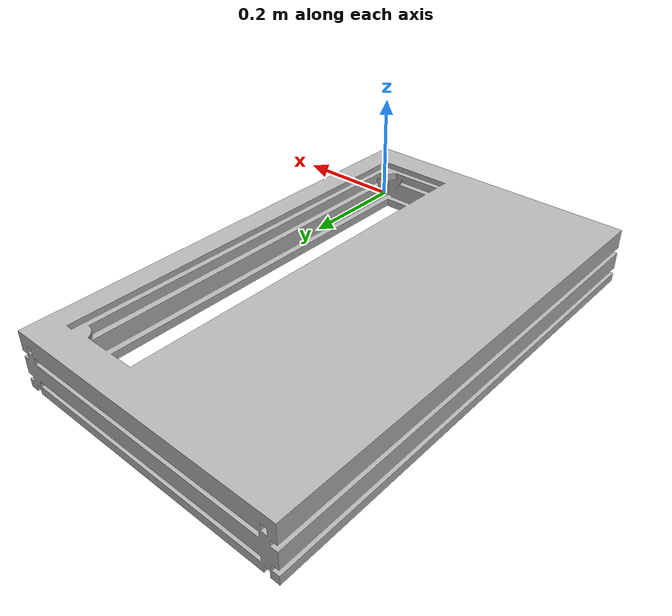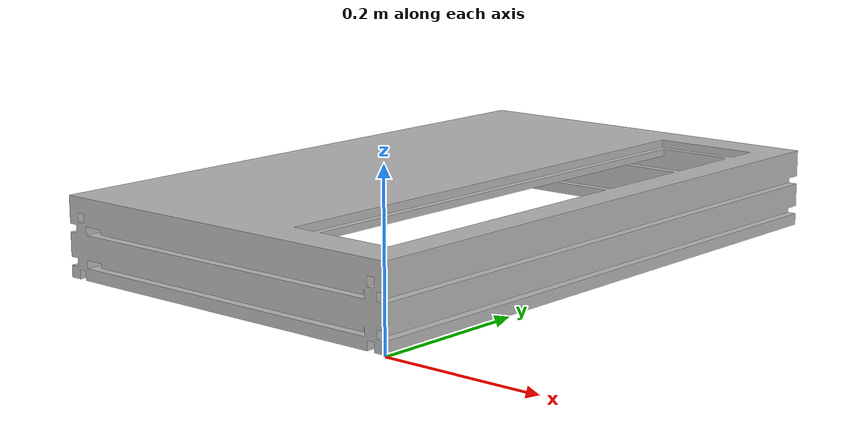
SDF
<?xml version="1.0" ?>
<sdf version="1.5">
  <model name="ppt_platform_800x500x99">
    <static>true</static>
    <link name="link">
      <pose>0 0 0 0 0 0</pose>
      <collision name="collision">
        <geometry>
          <mesh>
            <uri>model://ppt_platform_800x500x99/meshes/ppt_platform_800x500x99.dae</uri>
          </mesh>
        </geometry>
      </collision>
      <visual name="visual">
        <geometry>
          <mesh>
            <uri>model://ppt_platform_800x500x99/meshes/ppt_platform_800x500x99.dae</uri>
          </mesh>
        </geometry>
      </visual>
    </link>
  </model>
</sdf>
